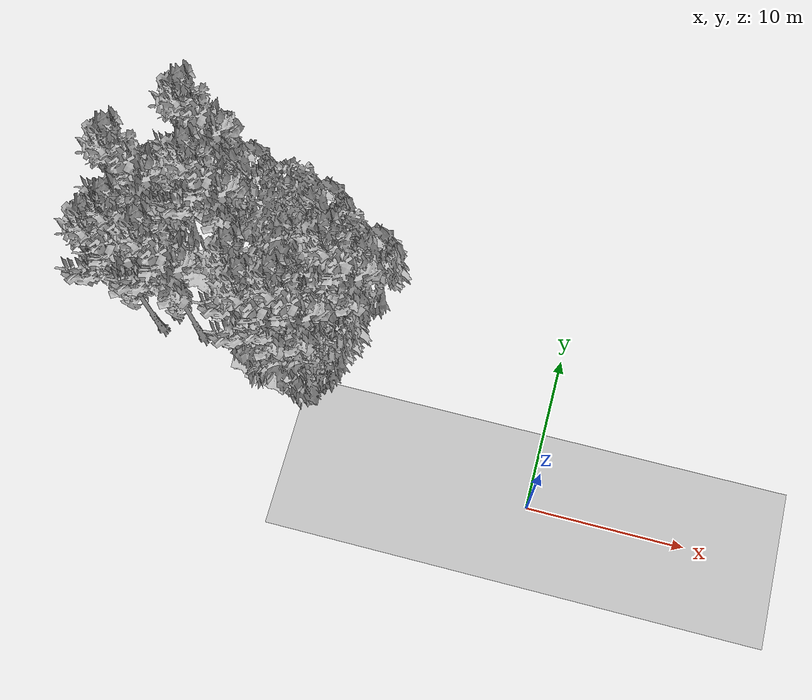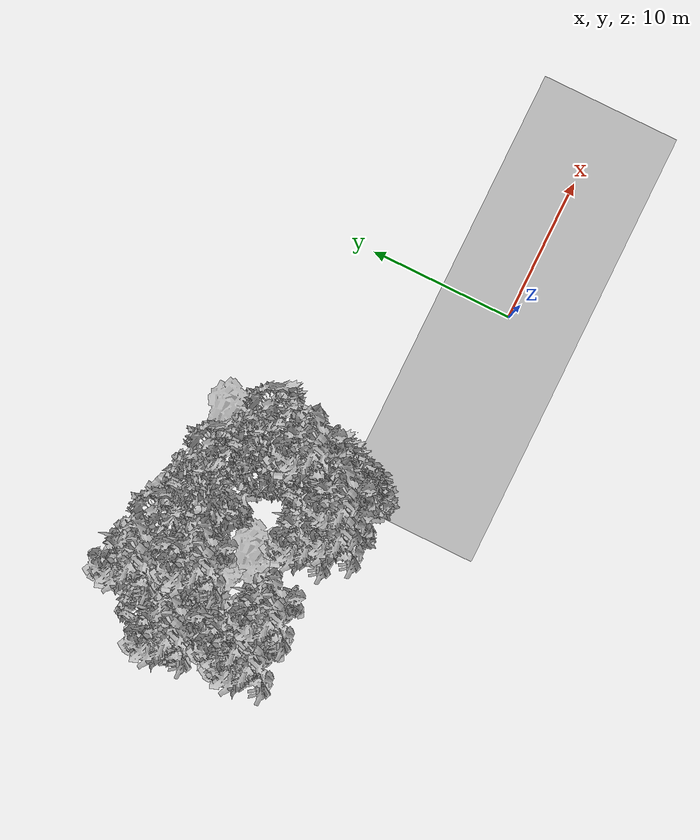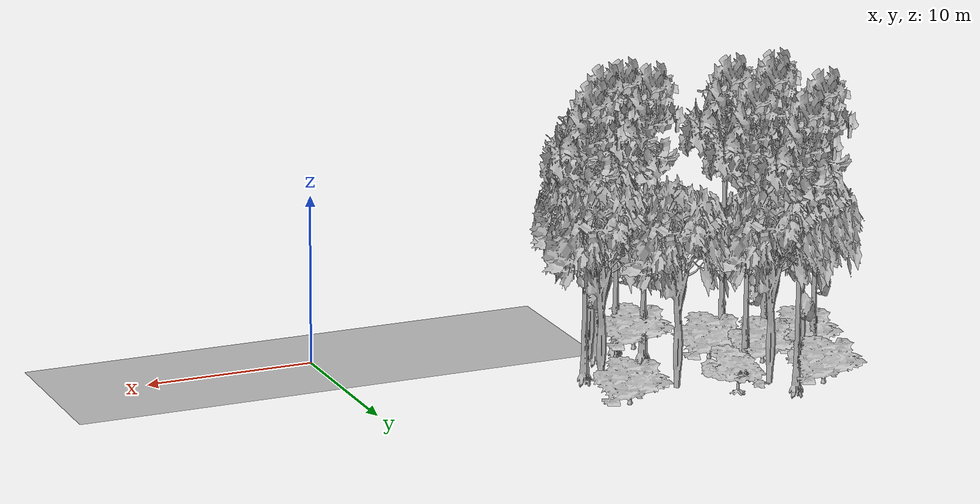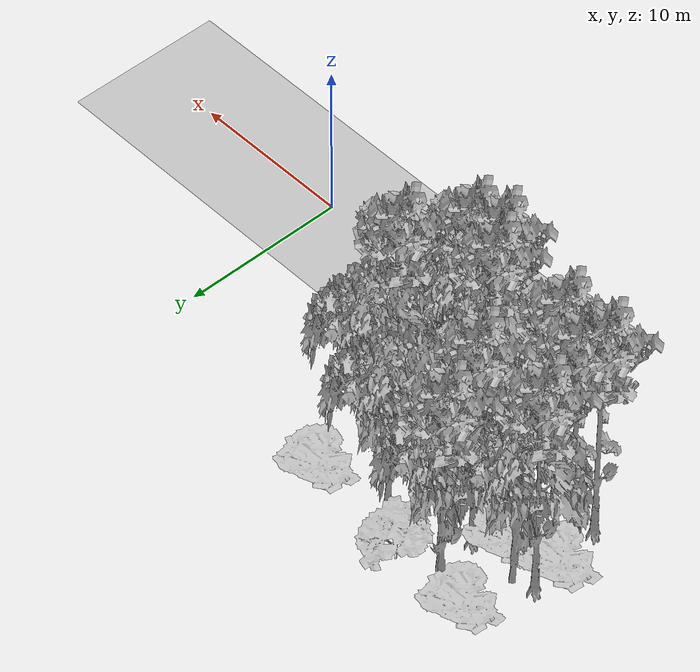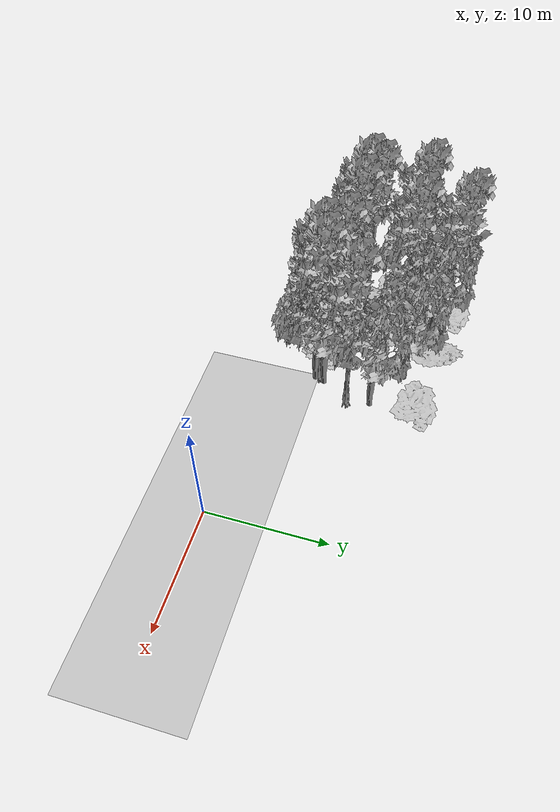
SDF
<sdf version="1.7">
 <world name="default">
  <model name="ground_plane">
   <static>1</static>
   <link name="link">
    <collision name="collision">
     <pose>-50 0 0 0 -0 0</pose>
     <geometry><plane><normal>0 0 1</normal><size>100 100</size></plane></geometry>
     <surface><contact><ode><min_depth>0.01</min_depth><max_vel>0</max_vel></ode></contact></surface>
    </collision>
    <visual name="grass">
     <cast_shadows>0</cast_shadows>
     <geometry>
      <mesh>
       <scale>0.5814285714285714 0.18142857142857144 0.1</scale>
       <uri>file://grass_plane/meshes/grass_plane.dae</uri>
      </mesh>
     </geometry>
    </visual>
   </link>
  </model>
  <model name="Tree 87">
   <static>1</static>
   <pose>-15.133794516465372 5.442347879812605 0 1.57079 -0 0</pose>
   <link name="link">
    <collision name="collision">
     <geometry><mesh><scale>3.5 5 3.5</scale><uri>model://tree_2/meshes/tree_2.obj</uri></mesh></geometry>
    </collision>
    <visual name="visual">
     <geometry><mesh><scale>3.5 5 3.5</scale><uri>model://tree_2/meshes/tree_2.obj</uri></mesh></geometry>
    </visual>
   </link>
  </model>
  <model name="Tree 96">
   <static>1</static>
   <pose>-18.232461544115257 4.631867852825472 0 1.57079 -0 0</pose>
   <link name="link">
    <collision name="collision">
     <geometry><mesh><scale>3 2 3</scale><uri>model://tree_3/meshes/tree_3.obj</uri></mesh></geometry>
    </collision>
    <visual name="visual">
     <geometry><mesh><scale>3 2 3</scale><uri>model://tree_3/meshes/tree_3.obj</uri></mesh></geometry>
    </visual>
   </link>
  </model>
  <model name="Tree 110">
   <static>1</static>
   <pose>-21.52793328889495 7.850153374294667 0 1.57079 -0 0</pose>
   <link name="link">
    <collision name="collision">
     <geometry><mesh><scale>3 2 3</scale><uri>model://tree_3/meshes/tree_3.obj</uri></mesh></geometry>
    </collision>
    <visual name="visual">
     <geometry><mesh><scale>3 2 3</scale><uri>model://tree_3/meshes/tree_3.obj</uri></mesh></geometry>
    </visual>
   </link>
  </model>
  <model name="Tree 132">
   <static>1</static>
   <pose>-13.656162843707314 7.813319681621309 0 1.57079 -0 0</pose>
   <link name="link">
    <collision name="collision">
     <geometry><mesh><scale>3.5 5 3.5</scale><uri>model://tree_9/meshes/tree_9.obj</uri></mesh></geometry>
    </collision>
    <visual name="visual">
     <geometry><mesh><scale>3.5 5 3.5</scale><uri>model://tree_9/meshes/tree_9.obj</uri></mesh></geometry>
    </visual>
   </link>
  </model>
  <model name="Tree 157">
   <static>1</static>
   <pose>-25.578603045592498 14.377982741091063 0 1.57079 -0 0</pose>
   <link name="link">
    <collision name="collision">
     <geometry><mesh><scale>3 2 3</scale><uri>model://tree_3/meshes/tree_3.obj</uri></mesh></geometry>
    </collision>
    <visual name="visual">
     <geometry><mesh><scale>3 2 3</scale><uri>model://tree_3/meshes/tree_3.obj</uri></mesh></geometry>
    </visual>
   </link>
  </model>
  <model name="Tree 158">
   <static>1</static>
   <pose>-23.874978138646004 14.36603040559913 0 1.57079 -0 0</pose>
   <link name="link">
    <collision name="collision">
     <geometry><mesh><scale>3.5 5 3.5</scale><uri>model://tree_9/meshes/tree_9.obj</uri></mesh></geometry>
    </collision>
    <visual name="visual">
     <geometry><mesh><scale>3.5 5 3.5</scale><uri>model://tree_9/meshes/tree_9.obj</uri></mesh></geometry>
    </visual>
   </link>
  </model>
  <model name="Tree 191">
   <static>1</static>
   <pose>-26.9154526082345 8.944625015221114 0 1.57079 -0 0</pose>
   <link name="link">
    <collision name="collision">
     <geometry><mesh><scale>3 2 3</scale><uri>model://tree_3/meshes/tree_3.obj</uri></mesh></geometry>
    </collision>
    <visual name="visual">
     <geometry><mesh><scale>3 2 3</scale><uri>model://tree_3/meshes/tree_3.obj</uri></mesh></geometry>
    </visual>
   </link>
  </model>
  <model name="Tree 192">
   <static>1</static>
   <pose>-17.23198005761328 4.277026043963609 0 1.57079 -0 0</pose>
   <link name="link">
    <collision name="collision">
     <geometry><mesh><scale>3.5 5 3.5</scale><uri>model://tree_9/meshes/tree_9.obj</uri></mesh></geometry>
    </collision>
    <visual name="visual">
     <geometry><mesh><scale>3.5 5 3.5</scale><uri>model://tree_9/meshes/tree_9.obj</uri></mesh></geometry>
    </visual>
   </link>
  </model>
  <model name="Tree 239">
   <static>1</static>
   <pose>-25.80428832938338 11.109389706047274 0 1.57079 -0 0</pose>
   <link name="link">
    <collision name="collision">
     <geometry><mesh><scale>3.5 5 3.5</scale><uri>model://tree_2/meshes/tree_2.obj</uri></mesh></geometry>
    </collision>
    <visual name="visual">
     <geometry><mesh><scale>3.5 5 3.5</scale><uri>model://tree_2/meshes/tree_2.obj</uri></mesh></geometry>
    </visual>
   </link>
  </model>
  <model name="Tree 258">
   <static>1</static>
   <pose>-25.54420659742585 6.857464613318346 0 1.57079 -0 0</pose>
   <link name="link">
    <collision name="collision">
     <geometry><mesh><scale>3.5 5 3.5</scale><uri>model://tree_9/meshes/tree_9.obj</uri></mesh></geometry>
    </collision>
    <visual name="visual">
     <geometry><mesh><scale>3.5 5 3.5</scale><uri>model://tree_9/meshes/tree_9.obj</uri></mesh></geometry>
    </visual>
   </link>
  </model>
  <model name="Tree 260">
   <static>1</static>
   <pose>-15.730697778385874 4.853940933311769 0 1.57079 -0 0</pose>
   <link name="link">
    <collision name="collision">
     <geometry><mesh><scale>3.5 5 3.5</scale><uri>model://tree_9/meshes/tree_9.obj</uri></mesh></geometry>
    </collision>
    <visual name="visual">
     <geometry><mesh><scale>3.5 5 3.5</scale><uri>model://tree_9/meshes/tree_9.obj</uri></mesh></geometry>
    </visual>
   </link>
  </model>
  <model name="Tree 264">
   <static>1</static>
   <pose>-26.809065620616103 10.625870122952442 0 1.57079 -0 0</pose>
   <link name="link">
    <collision name="collision">
     <geometry><mesh><scale>3.5 5 3.5</scale><uri>model://tree_9/meshes/tree_9.obj</uri></mesh></geometry>
    </collision>
    <visual name="visual">
     <geometry><mesh><scale>3.5 5 3.5</scale><uri>model://tree_9/meshes/tree_9.obj</uri></mesh></geometry>
    </visual>
   </link>
  </model>
  <model name="Tree 306">
   <static>1</static>
   <pose>-23.306367386037326 5.8314856464236335 0 1.57079 -0 0</pose>
   <link name="link">
    <collision name="collision">
     <geometry><mesh><scale>3.5 5 3.5</scale><uri>model://tree_9/meshes/tree_9.obj</uri></mesh></geometry>
    </collision>
    <visual name="visual">
     <geometry><mesh><scale>3.5 5 3.5</scale><uri>model://tree_9/meshes/tree_9.obj</uri></mesh></geometry>
    </visual>
   </link>
  </model>
  <model name="Tree 317">
   <static>1</static>
   <pose>-13.840320409572001 9.814805352523592 0 1.57079 -0 0</pose>
   <link name="link">
    <collision name="collision">
     <geometry><mesh><scale>3.5 5 3.5</scale><uri>model://tree_2/meshes/tree_2.obj</uri></mesh></geometry>
    </collision>
    <visual name="visual">
     <geometry><mesh><scale>3.5 5 3.5</scale><uri>model://tree_2/meshes/tree_2.obj</uri></mesh></geometry>
    </visual>
   </link>
  </model>
  <model name="Tree 326">
   <static>1</static>
   <pose>-22.762268896020927 13.328687769318634 0 1.57079 -0 0</pose>
   <link name="link">
    <collision name="collision">
     <geometry><mesh><scale>3.5 5 3.5</scale><uri>model://tree_2/meshes/tree_2.obj</uri></mesh></geometry>
    </collision>
    <visual name="visual">
     <geometry><mesh><scale>3.5 5 3.5</scale><uri>model://tree_2/meshes/tree_2.obj</uri></mesh></geometry>
    </visual>
   </link>
  </model>
  <model name="Tree 338">
   <static>1</static>
   <pose>-20.28959922319747 14.120116735339042 0 1.57079 -0 0</pose>
   <link name="link">
    <collision name="collision">
     <geometry><mesh><scale>4 2.5 4</scale><uri>model://tree_1/meshes/tree_1.obj</uri></mesh></geometry>
    </collision>
    <visual name="visual">
     <geometry><mesh><scale>4 2.5 4</scale><uri>model://tree_1/meshes/tree_1.obj</uri></mesh></geometry>
    </visual>
   </link>
  </model>
  <model name="Tree 357">
   <static>1</static>
   <pose>-17.56572388557049 12.037837747812016 0 1.57079 -0 0</pose>
   <link name="link">
    <collision name="collision">
     <geometry><mesh><scale>3.5 5 3.5</scale><uri>model://tree_2/meshes/tree_2.obj</uri></mesh></geometry>
    </collision>
    <visual name="visual">
     <geometry><mesh><scale>3.5 5 3.5</scale><uri>model://tree_2/meshes/tree_2.obj</uri></mesh></geometry>
    </visual>
   </link>
  </model>
  <model name="Tree 368">
   <static>1</static>
   <pose>-13.88197634884525 13.439162740272288 0 1.57079 -0 0</pose>
   <link name="link">
    <collision name="collision">
     <geometry><mesh><scale>3 2 3</scale><uri>model://tree_3/meshes/tree_3.obj</uri></mesh></geometry>
    </collision>
    <visual name="visual">
     <geometry><mesh><scale>3 2 3</scale><uri>model://tree_3/meshes/tree_3.obj</uri></mesh></geometry>
    </visual>
   </link>
  </model>
  <model name="Tree 419">
   <static>1</static>
   <pose>-26.140998526540717 5.770400857178608 0 1.57079 -0 0</pose>
   <link name="link">
    <collision name="collision">
     <geometry><mesh><scale>3.5 5 3.5</scale><uri>model://tree_9/meshes/tree_9.obj</uri></mesh></geometry>
    </collision>
    <visual name="visual">
     <geometry><mesh><scale>3.5 5 3.5</scale><uri>model://tree_9/meshes/tree_9.obj</uri></mesh></geometry>
    </visual>
   </link>
  </model>
  <model name="Tree 438">
   <static>1</static>
   <pose>-22.396197712858683 10.778092075316525 0 1.57079 -0 0</pose>
   <link name="link">
    <collision name="collision">
     <geometry><mesh><scale>3.5 5 3.5</scale><uri>model://tree_9/meshes/tree_9.obj</uri></mesh></geometry>
    </collision>
    <visual name="visual">
     <geometry><mesh><scale>3.5 5 3.5</scale><uri>model://tree_9/meshes/tree_9.obj</uri></mesh></geometry>
    </visual>
   </link>
  </model>
  <model name="Tree 479">
   <static>1</static>
   <pose>-15.406189394507912 4.635399965543986 0 1.57079 -0 0</pose>
   <link name="link">
    <collision name="collision">
     <geometry><mesh><scale>3.5 5 3.5</scale><uri>model://tree_2/meshes/tree_2.obj</uri></mesh></geometry>
    </collision>
    <visual name="visual">
     <geometry><mesh><scale>3.5 5 3.5</scale><uri>model://tree_2/meshes/tree_2.obj</uri></mesh></geometry>
    </visual>
   </link>
  </model>
  <model name="Tree 504">
   <static>1</static>
   <pose>-18.320464726875556 5.723279834573308 0 1.57079 -0 0</pose>
   <link name="link">
    <collision name="collision">
     <geometry><mesh><scale>3.5 5 3.5</scale><uri>model://tree_9/meshes/tree_9.obj</uri></mesh></geometry>
    </collision>
    <visual name="visual">
     <geometry><mesh><scale>3.5 5 3.5</scale><uri>model://tree_9/meshes/tree_9.obj</uri></mesh></geometry>
    </visual>
   </link>
  </model>
  <model name="Tree 517">
   <static>1</static>
   <pose>-24.018102934800144 9.761029638023277 0 1.57079 -0 0</pose>
   <link name="link">
    <collision name="collision">
     <geometry><mesh><scale>3 2 3</scale><uri>model://tree_3/meshes/tree_3.obj</uri></mesh></geometry>
    </collision>
    <visual name="visual">
     <geometry><mesh><scale>3 2 3</scale><uri>model://tree_3/meshes/tree_3.obj</uri></mesh></geometry>
    </visual>
   </link>
  </model>
 </world>
</sdf>
